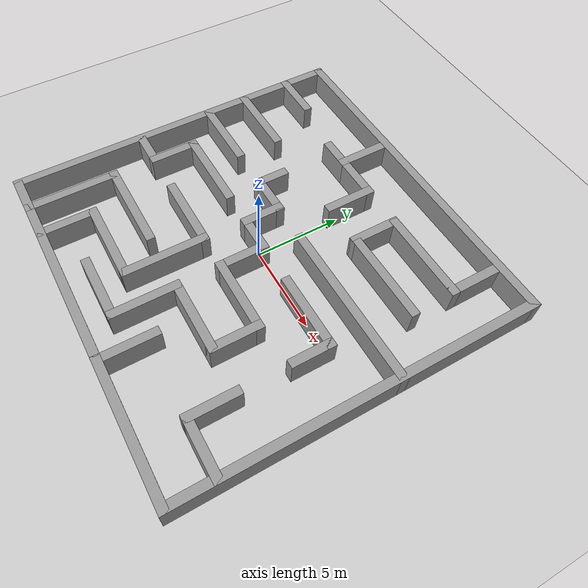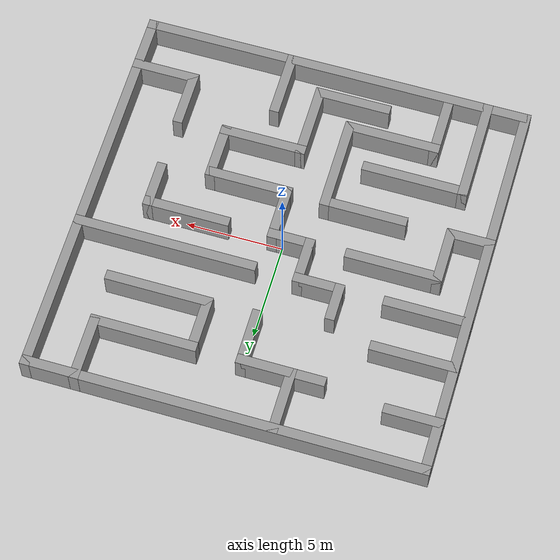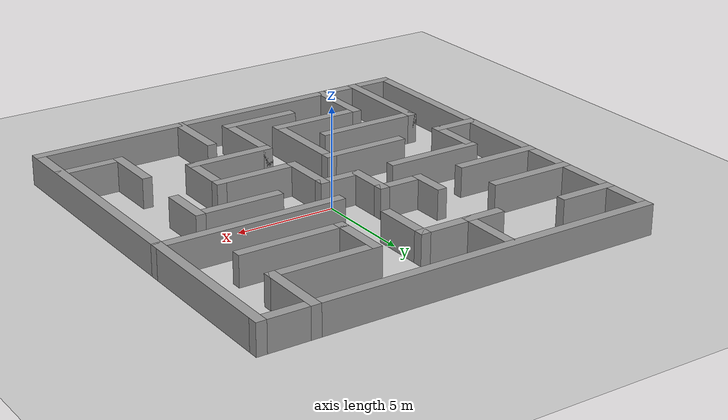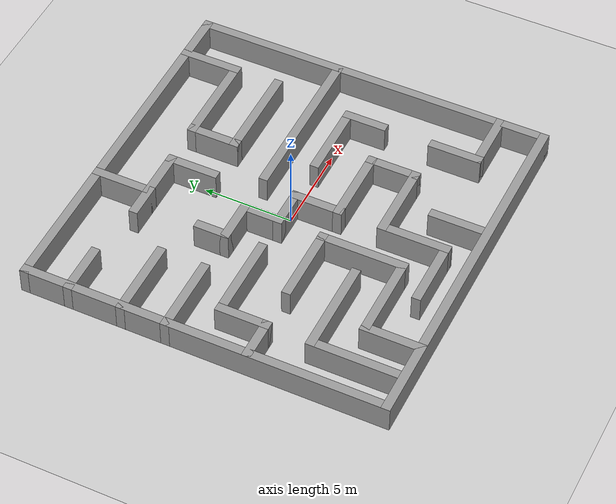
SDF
<sdf version="1.6">
 <world name="default">
  <light name="sun" type="directional">
   <pose>0 0 10 0 -0 0</pose>
   <diffuse>0.8 0.8 0.8 1</diffuse>
   <specular>0.1 0.1 0.1 1</specular>
   <attenuation>
    <range>1000</range>
    <constant>0.9</constant>
    <linear>0.01</linear>
    <quadratic>0.001</quadratic>
   </attenuation>
   <direction>-0.5 0.5 -1</direction>
  </light>
  <model name="ground_plane">
   <static>1</static>
   <link name="link">
    <collision name="collision">
     <geometry><plane><normal>0 0 1</normal><size>100 100</size></plane></geometry>
     <surface><friction><ode><mu>100</mu><mu2>50</mu2></ode></friction></surface>
    </collision>
    <visual name="visual">
     <cast_shadows>0</cast_shadows>
     <geometry><plane><normal>0 0 1</normal><size>100 100</size></plane></geometry>
     <material>
      <script><uri>file://media/materials/scripts/gazebo.material</uri><name>Gazebo/Grey</name></script>
     </material>
    </visual>
   </link>
  </model>
  <gravity>0 0 -9.8</gravity>
  <magnetic_field>6e-06 2.3e-05 -4.2e-05</magnetic_field>
  <atmosphere type="adiabatic"/>
  <physics name="default_physics" default="0" type="ode">
   <max_step_size>0.001</max_step_size>
   <real_time_factor>1</real_time_factor>
   <real_time_update_rate>1000</real_time_update_rate>
  </physics>
  <scene><ambient>0.4 0.4 0.4 1</ambient><background>0.7 0.7 0.7 1</background><shadows>1</shadows></scene>
  <spherical_coordinates>
   <surface_model>EARTH_WGS84</surface_model>
   <latitude_deg>0</latitude_deg>
   <longitude_deg>0</longitude_deg>
   <elevation>0</elevation>
   <heading_deg>0</heading_deg>
  </spherical_coordinates>
  <model name="one_try">
   <link name="Wall_0">
    <collision name="Wall_0_Collision">
     <geometry><box><size>20.5 0.5 1.5</size></box></geometry>
     <pose>0 0 0.75 0 -0 0</pose>
    </collision>
    <visual name="Wall_0_Visual">
     <pose>0 0 0.75 0 -0 0</pose>
     <geometry><box><size>20.5 0.5 1.5</size></box></geometry>
     <material>
      <script><uri>file://media/materials/scripts/gazebo.material</uri><name>Gazebo/Grey</name></script>
      <ambient>1 1 1 1</ambient>
     </material>
    </visual>
    <pose>-10 0 0 0 0 -1.5708</pose>
   </link>
   <link name="Wall_1">
    <collision name="Wall_1_Collision">
     <geometry><box><size>20.5 0.5 1.5</size></box></geometry>
     <pose>0 0 0.75 0 -0 0</pose>
    </collision>
    <visual name="Wall_1_Visual">
     <pose>0 0 0.75 0 -0 0</pose>
     <geometry><box><size>20.5 0.5 1.5</size></box></geometry>
     <material>
      <script><uri>file://media/materials/scripts/gazebo.material</uri><name>Gazebo/Grey</name></script>
      <ambient>1 1 1 1</ambient>
     </material>
    </visual>
    <pose>0 -10 0 0 -0 0</pose>
   </link>
   <link name="Wall_10">
    <collision name="Wall_10_Collision">
     <geometry><box><size>5 0.5 1.5</size></box></geometry>
     <pose>0 0 0.75 0 -0 0</pose>
    </collision>
    <visual name="Wall_10_Visual">
     <pose>0 0 0.75 0 -0 0</pose>
     <geometry><box><size>5 0.5 1.5</size></box></geometry>
     <material>
      <script><uri>file://media/materials/scripts/gazebo.material</uri><name>Gazebo/Grey</name></script>
      <ambient>1 1 1 1</ambient>
     </material>
    </visual>
    <pose>-1.5 -4.75 0 0 -0 1.5708</pose>
   </link>
   <link name="Wall_11">
    <collision name="Wall_11_Collision">
     <geometry><box><size>4.5 0.5 1.5</size></box></geometry>
     <pose>0 0 0.75 0 -0 0</pose>
    </collision>
    <visual name="Wall_11_Visual">
     <pose>0 0 0.75 0 -0 0</pose>
     <geometry><box><size>4.5 0.5 1.5</size></box></geometry>
     <material>
      <script><uri>file://media/materials/scripts/gazebo.material</uri><name>Gazebo/Grey</name></script>
      <ambient>1 1 1 1</ambient>
     </material>
    </visual>
    <pose>-3.5 -2.5 0 0 -0 3.14159</pose>
   </link>
   <link name="Wall_13">
    <collision name="Wall_13_Collision">
     <geometry><box><size>2.5 0.5 1.5</size></box></geometry>
     <pose>0 0 0.75 0 -0 0</pose>
    </collision>
    <visual name="Wall_13_Visual">
     <pose>0 0 0.75 0 -0 0</pose>
     <geometry><box><size>2.5 0.5 1.5</size></box></geometry>
     <material>
      <script><uri>file://media/materials/scripts/gazebo.material</uri><name>Gazebo/Grey</name></script>
      <ambient>1 1 1 1</ambient>
     </material>
    </visual>
    <pose>-9 -2.5 0 0 -0 0</pose>
   </link>
   <link name="Wall_14">
    <collision name="Wall_14_Collision">
     <geometry><box><size>3 0.5 1.5</size></box></geometry>
     <pose>0 0 0.75 0 -0 0</pose>
    </collision>
    <visual name="Wall_14_Visual">
     <pose>0 0 0.75 0 -0 0</pose>
     <geometry><box><size>3 0.5 1.5</size></box></geometry>
     <material>
      <script><uri>file://media/materials/scripts/gazebo.material</uri><name>Gazebo/Grey</name></script>
      <ambient>1 1 1 1</ambient>
     </material>
    </visual>
    <pose>-8 -1.25 0 0 -0 1.5708</pose>
   </link>
   <link name="Wall_15">
    <collision name="Wall_15_Collision">
     <geometry><box><size>5 0.5 1.5</size></box></geometry>
     <pose>0 0 0.75 0 -0 0</pose>
    </collision>
    <visual name="Wall_15_Visual">
     <pose>0 0 0.75 0 -0 0</pose>
     <geometry><box><size>5 0.5 1.5</size></box></geometry>
     <material>
      <script><uri>file://media/materials/scripts/gazebo.material</uri><name>Gazebo/Grey</name></script>
      <ambient>1 1 1 1</ambient>
     </material>
    </visual>
    <pose>-5.75 0 0 0 -0 0</pose>
   </link>
   <link name="Wall_17">
    <collision name="Wall_17_Collision">
     <geometry><box><size>4 0.5 1.5</size></box></geometry>
     <pose>0 0 0.75 0 -0 0</pose>
    </collision>
    <visual name="Wall_17_Visual">
     <pose>0 0 0.75 0 -0 0</pose>
     <geometry><box><size>4 0.5 1.5</size></box></geometry>
     <material>
      <script><uri>file://media/materials/scripts/gazebo.material</uri><name>Gazebo/Grey</name></script>
      <ambient>1 1 1 1</ambient>
     </material>
    </visual>
    <pose>-1.25 -8.5 0 0 -0 0</pose>
   </link>
   <link name="Wall_18">
    <collision name="Wall_18_Collision">
     <geometry><box><size>4 0.5 1.5</size></box></geometry>
     <pose>0 0 0.75 0 -0 0</pose>
    </collision>
    <visual name="Wall_18_Visual">
     <pose>0 0 0.75 0 -0 0</pose>
     <geometry><box><size>4 0.5 1.5</size></box></geometry>
     <material>
      <script><uri>file://media/materials/scripts/gazebo.material</uri><name>Gazebo/Grey</name></script>
      <ambient>1 1 1 1</ambient>
     </material>
    </visual>
    <pose>0.5 -6.75 0 0 -0 1.5708</pose>
   </link>
   <link name="Wall_19">
    <collision name="Wall_19_Collision">
     <geometry><box><size>4.5 0.5 1.5</size></box></geometry>
     <pose>0 0 0.75 0 -0 0</pose>
    </collision>
    <visual name="Wall_19_Visual">
     <pose>0 0 0.75 0 -0 0</pose>
     <geometry><box><size>4.5 0.5 1.5</size></box></geometry>
     <material>
      <script><uri>file://media/materials/scripts/gazebo.material</uri><name>Gazebo/Grey</name></script>
      <ambient>1 1 1 1</ambient>
     </material>
    </visual>
    <pose>2.5 -5 0 0 -0 0</pose>
   </link>
   <link name="Wall_2">
    <collision name="Wall_2_Collision">
     <geometry><box><size>20.5 0.5 1.5</size></box></geometry>
     <pose>0 0 0.75 0 -0 0</pose>
    </collision>
    <visual name="Wall_2_Visual">
     <pose>0 0 0.75 0 -0 0</pose>
     <geometry><box><size>20.5 0.5 1.5</size></box></geometry>
     <material>
      <script><uri>file://media/materials/scripts/gazebo.material</uri><name>Gazebo/Grey</name></script>
      <ambient>1 1 1 1</ambient>
     </material>
    </visual>
    <pose>10 0 0 0 -0 1.5708</pose>
   </link>
   <link name="Wall_20">
    <collision name="Wall_20_Collision">
     <geometry><box><size>3 0.5 1.5</size></box></geometry>
     <pose>0 0 0.75 0 -0 0</pose>
    </collision>
    <visual name="Wall_20_Visual">
     <pose>0 0 0.75 0 -0 0</pose>
     <geometry><box><size>3 0.5 1.5</size></box></geometry>
     <material>
      <script><uri>file://media/materials/scripts/gazebo.material</uri><name>Gazebo/Grey</name></script>
      <ambient>1 1 1 1</ambient>
     </material>
    </visual>
    <pose>4.5 -3.75 0 0 -0 1.5708</pose>
   </link>
   <link name="Wall_21">
    <collision name="Wall_21_Collision">
     <geometry><box><size>4.5 0.5 1.5</size></box></geometry>
     <pose>0 0 0.75 0 -0 0</pose>
    </collision>
    <visual name="Wall_21_Visual">
     <pose>0 0 0.75 0 -0 0</pose>
     <geometry><box><size>4.5 0.5 1.5</size></box></geometry>
     <material>
      <script><uri>file://media/materials/scripts/gazebo.material</uri><name>Gazebo/Grey</name></script>
      <ambient>1 1 1 1</ambient>
     </material>
    </visual>
    <pose>2.5 -2.5 0 0 -0 3.14159</pose>
   </link>
   <link name="Wall_22">
    <collision name="Wall_22_Collision">
     <geometry><box><size>3 0.5 1.5</size></box></geometry>
     <pose>0 0 0.75 0 -0 0</pose>
    </collision>
    <visual name="Wall_22_Visual">
     <pose>0 0 0.75 0 -0 0</pose>
     <geometry><box><size>3 0.5 1.5</size></box></geometry>
     <material>
      <script><uri>file://media/materials/scripts/gazebo.material</uri><name>Gazebo/Grey</name></script>
      <ambient>1 1 1 1</ambient>
     </material>
    </visual>
    <pose>0.5 -1.25 0 0 -0 1.5708</pose>
   </link>
   <link name="Wall_23">
    <collision name="Wall_23_Collision">
     <geometry><box><size>2.4 0.5 1.5</size></box></geometry>
     <pose>0 0 0.75 0 -0 0</pose>
    </collision>
    <visual name="Wall_23_Visual">
     <pose>0 0 0.75 0 -0 0</pose>
     <geometry><box><size>2.4 0.5 1.5</size></box></geometry>
     <material>
      <script><uri>file://media/materials/scripts/gazebo.material</uri><name>Gazebo/Grey</name></script>
      <ambient>1 1 1 1</ambient>
     </material>
    </visual>
    <pose>-0.45 0 0 0 -0 3.14159</pose>
   </link>
   <link name="Wall_24">
    <collision name="Wall_24_Collision">
     <geometry><box><size>2.5 0.5 1.5</size></box></geometry>
     <pose>0 0 0.75 0 -0 0</pose>
    </collision>
    <visual name="Wall_24_Visual">
     <pose>0 0 0.75 0 -0 0</pose>
     <geometry><box><size>2.5 0.5 1.5</size></box></geometry>
     <material>
      <script><uri>file://media/materials/scripts/gazebo.material</uri><name>Gazebo/Grey</name></script>
      <ambient>1 1 1 1</ambient>
     </material>
    </visual>
    <pose>-1.4 1 0 0 -0 1.5708</pose>
   </link>
   <link name="Wall_25">
    <collision name="Wall_25_Collision">
     <geometry><box><size>2.6 0.5 1.5</size></box></geometry>
     <pose>0 0 0.75 0 -0 0</pose>
    </collision>
    <visual name="Wall_25_Visual">
     <pose>0 0 0.75 0 -0 0</pose>
     <geometry><box><size>2.6 0.5 1.5</size></box></geometry>
     <material>
      <script><uri>file://media/materials/scripts/gazebo.material</uri><name>Gazebo/Grey</name></script>
      <ambient>1 1 1 1</ambient>
     </material>
    </visual>
    <pose>-2.45 2 0 0 -0 3.14159</pose>
   </link>
   <link name="Wall_26">
    <collision name="Wall_26_Collision">
     <geometry><box><size>2 0.5 1.5</size></box></geometry>
     <pose>0 0 0.75 0 -0 0</pose>
    </collision>
    <visual name="Wall_26_Visual">
     <pose>0 0 0.75 0 -0 0</pose>
     <geometry><box><size>2 0.5 1.5</size></box></geometry>
     <material>
      <script><uri>file://media/materials/scripts/gazebo.material</uri><name>Gazebo/Grey</name></script>
      <ambient>1 1 1 1</ambient>
     </material>
    </visual>
    <pose>-3.5 2.75 0 0 -0 1.5708</pose>
   </link>
   <link name="Wall_28">
    <collision name="Wall_28_Collision">
     <geometry><box><size>3.5 0.5 1.5</size></box></geometry>
     <pose>0 0 0.75 0 -0 0</pose>
    </collision>
    <visual name="Wall_28_Visual">
     <pose>0 0 0.75 0 -0 0</pose>
     <geometry><box><size>3.5 0.5 1.5</size></box></geometry>
     <material>
      <script><uri>file://media/materials/scripts/gazebo.material</uri><name>Gazebo/Grey</name></script>
      <ambient>1 1 1 1</ambient>
     </material>
    </visual>
    <pose>2.445 -8.5 0 0 0 -1.5708</pose>
   </link>
   <link name="Wall_3">
    <collision name="Wall_3_Collision">
     <geometry><box><size>20.5 0.5 1.5</size></box></geometry>
     <pose>0 0 0.75 0 -0 0</pose>
    </collision>
    <visual name="Wall_3_Visual">
     <pose>0 0 0.75 0 -0 0</pose>
     <geometry><box><size>20.5 0.5 1.5</size></box></geometry>
     <material>
      <script><uri>file://media/materials/scripts/gazebo.material</uri><name>Gazebo/Grey</name></script>
      <ambient>1 1 1 1</ambient>
     </material>
    </visual>
    <pose>0 10 0 0 -0 3.14159</pose>
   </link>
   <link name="Wall_30">
    <collision name="Wall_30_Collision">
     <geometry><box><size>9.5 0.5 1.5</size></box></geometry>
     <pose>0 0 0.75 0 -0 0</pose>
    </collision>
    <visual name="Wall_30_Visual">
     <pose>0 0 0.75 0 -0 0</pose>
     <geometry><box><size>9.5 0.5 1.5</size></box></geometry>
     <material>
      <script><uri>file://media/materials/scripts/gazebo.material</uri><name>Gazebo/Grey</name></script>
      <ambient>1 1 1 1</ambient>
     </material>
    </visual>
    <pose>5.5 2 0 0 -0 0</pose>
   </link>
   <link name="Wall_34">
    <collision name="Wall_34_Collision">
     <geometry><box><size>4.5 0.5 1.5</size></box></geometry>
     <pose>0 0 0.75 0 -0 0</pose>
    </collision>
    <visual name="Wall_34_Visual">
     <pose>0 0 0.75 0 -0 0</pose>
     <geometry><box><size>4.5 0.5 1.5</size></box></geometry>
     <material>
      <script><uri>file://media/materials/scripts/gazebo.material</uri><name>Gazebo/Grey</name></script>
      <ambient>1 1 1 1</ambient>
     </material>
    </visual>
    <pose>5 0 0 0 -0 0</pose>
   </link>
   <link name="Wall_35">
    <collision name="Wall_35_Collision">
     <geometry><box><size>2.5 0.5 1.5</size></box></geometry>
     <pose>0 0 0.75 0 -0 0</pose>
    </collision>
    <visual name="Wall_35_Visual">
     <pose>0 0 0.75 0 -0 0</pose>
     <geometry><box><size>2.5 0.5 1.5</size></box></geometry>
     <material>
      <script><uri>file://media/materials/scripts/gazebo.material</uri><name>Gazebo/Grey</name></script>
      <ambient>1 1 1 1</ambient>
     </material>
    </visual>
    <pose>7 -1 0 0 0 -1.5708</pose>
   </link>
   <link name="Wall_37">
    <collision name="Wall_37_Collision">
     <geometry><box><size>3 0.5 1.5</size></box></geometry>
     <pose>0 0 0.75 0 -0 0</pose>
    </collision>
    <visual name="Wall_37_Visual">
     <pose>0 0 0.75 0 -0 0</pose>
     <geometry><box><size>3 0.5 1.5</size></box></geometry>
     <material>
      <script><uri>file://media/materials/scripts/gazebo.material</uri><name>Gazebo/Grey</name></script>
      <ambient>1 1 1 1</ambient>
     </material>
    </visual>
    <pose>7 -6.25 0 0 0 -1.5708</pose>
   </link>
   <link name="Wall_38">
    <collision name="Wall_38_Collision">
     <geometry><box><size>3.5 0.5 1.5</size></box></geometry>
     <pose>0 0 0.75 0 -0 0</pose>
    </collision>
    <visual name="Wall_38_Visual">
     <pose>0 0 0.75 0 -0 0</pose>
     <geometry><box><size>3.5 0.5 1.5</size></box></geometry>
     <material>
      <script><uri>file://media/materials/scripts/gazebo.material</uri><name>Gazebo/Grey</name></script>
      <ambient>1 1 1 1</ambient>
     </material>
    </visual>
    <pose>8.5 -7.5 0 0 -0 0</pose>
   </link>
   <link name="Wall_43">
    <collision name="Wall_43_Collision">
     <geometry><box><size>3.5 0.5 1.5</size></box></geometry>
     <pose>0 0 0.75 0 -0 0</pose>
    </collision>
    <visual name="Wall_43_Visual">
     <pose>0 0 0.75 0 -0 0</pose>
     <geometry><box><size>3.5 0.5 1.5</size></box></geometry>
     <material>
      <script><uri>file://media/materials/scripts/gazebo.material</uri><name>Gazebo/Grey</name></script>
      <ambient>1 1 1 1</ambient>
     </material>
    </visual>
    <pose>7.5 8.5 0 0 0 -1.5708</pose>
   </link>
   <link name="Wall_44">
    <collision name="Wall_44_Collision">
     <geometry><box><size>5.5 0.5 1.5</size></box></geometry>
     <pose>0 0 0.75 0 -0 0</pose>
    </collision>
    <visual name="Wall_44_Visual">
     <pose>0 0 0.75 0 -0 0</pose>
     <geometry><box><size>5.5 0.5 1.5</size></box></geometry>
     <material>
      <script><uri>file://media/materials/scripts/gazebo.material</uri><name>Gazebo/Grey</name></script>
      <ambient>1 1 1 1</ambient>
     </material>
    </visual>
    <pose>5 7 0 0 -0 3.14159</pose>
   </link>
   <link name="Wall_45">
    <collision name="Wall_45_Collision">
     <geometry><box><size>3 0.5 1.5</size></box></geometry>
     <pose>0 0 0.75 0 -0 0</pose>
    </collision>
    <visual name="Wall_45_Visual">
     <pose>0 0 0.75 0 -0 0</pose>
     <geometry><box><size>3 0.5 1.5</size></box></geometry>
     <material>
      <script><uri>file://media/materials/scripts/gazebo.material</uri><name>Gazebo/Grey</name></script>
      <ambient>1 1 1 1</ambient>
     </material>
    </visual>
    <pose>2.5 5.75 0 0 0 -1.5708</pose>
   </link>
   <link name="Wall_46">
    <collision name="Wall_46_Collision">
     <geometry><box><size>5.5 0.5 1.5</size></box></geometry>
     <pose>0 0 0.75 0 -0 0</pose>
    </collision>
    <visual name="Wall_46_Visual">
     <pose>0 0 0.75 0 -0 0</pose>
     <geometry><box><size>5.5 0.5 1.5</size></box></geometry>
     <material>
      <script><uri>file://media/materials/scripts/gazebo.material</uri><name>Gazebo/Grey</name></script>
      <ambient>1 1 1 1</ambient>
     </material>
    </visual>
    <pose>5 4.5 0 0 -0 0</pose>
   </link>
   <link name="Wall_5">
    <collision name="Wall_5_Collision">
     <geometry><box><size>5.499 0.5 1.5</size></box></geometry>
     <pose>0 0 0.75 0 -0 0</pose>
    </collision>
    <visual name="Wall_5_Visual">
     <pose>0 0 0.75 0 -0 0</pose>
     <geometry><box><size>5.499 0.5 1.5</size></box></geometry>
     <material>
      <script><uri>file://media/materials/scripts/gazebo.material</uri><name>Gazebo/Grey</name></script>
      <ambient>1 1 1 1</ambient>
     </material>
    </visual>
    <pose>-8 -7.4995 0 0 -0 1.5708</pose>
   </link>
   <link name="Wall_51">
    <collision name="Wall_51_Collision">
     <geometry><box><size>3 0.5 1.5</size></box></geometry>
     <pose>0 0 0.75 0 -0 0</pose>
    </collision>
    <visual name="Wall_51_Visual">
     <pose>0 0 0.75 0 -0 0</pose>
     <geometry><box><size>3 0.5 1.5</size></box></geometry>
     <material>
      <script><uri>file://media/materials/scripts/gazebo.material</uri><name>Gazebo/Grey</name></script>
      <ambient>1 1 1 1</ambient>
     </material>
    </visual>
    <pose>-8.75 7.5 0 0 -0 3.14159</pose>
   </link>
   <link name="Wall_53">
    <collision name="Wall_53_Collision">
     <geometry><box><size>4.5 0.5 1.5</size></box></geometry>
     <pose>0 0 0.75 0 -0 0</pose>
    </collision>
    <visual name="Wall_53_Visual">
     <pose>0 0 0.75 0 -0 0</pose>
     <geometry><box><size>4.5 0.5 1.5</size></box></geometry>
     <material>
      <script><uri>file://media/materials/scripts/gazebo.material</uri><name>Gazebo/Grey</name></script>
      <ambient>1 1 1 1</ambient>
     </material>
    </visual>
    <pose>-8 2 0 0 -0 0</pose>
   </link>
   <link name="Wall_55">
    <collision name="Wall_55_Collision">
     <geometry><box><size>4.5 0.5 1.5</size></box></geometry>
     <pose>0 0 0.75 0 -0 0</pose>
    </collision>
    <visual name="Wall_55_Visual">
     <pose>0 0 0.75 0 -0 0</pose>
     <geometry><box><size>4.5 0.5 1.5</size></box></geometry>
     <material>
      <script><uri>file://media/materials/scripts/gazebo.material</uri><name>Gazebo/Grey</name></script>
      <ambient>1 1 1 1</ambient>
     </material>
    </visual>
    <pose>-8 4.5 0 0 -0 0</pose>
   </link>
   <link name="Wall_57">
    <collision name="Wall_57_Collision">
     <geometry><box><size>3 0.5 1.5</size></box></geometry>
     <pose>0 0 0.75 0 -0 0</pose>
    </collision>
    <visual name="Wall_57_Visual">
     <pose>0 0 0.75 0 -0 0</pose>
     <geometry><box><size>3 0.5 1.5</size></box></geometry>
     <material>
      <script><uri>file://media/materials/scripts/gazebo.material</uri><name>Gazebo/Grey</name></script>
      <ambient>1 1 1 1</ambient>
     </material>
    </visual>
    <pose>0 5.75 0 0 -0 1.5708</pose>
   </link>
   <link name="Wall_58">
    <collision name="Wall_58_Collision">
     <geometry><box><size>3 0.5 1.5</size></box></geometry>
     <pose>0 0 0.75 0 -0 0</pose>
    </collision>
    <visual name="Wall_58_Visual">
     <pose>0 0 0.75 0 -0 0</pose>
     <geometry><box><size>3 0.5 1.5</size></box></geometry>
     <material>
      <script><uri>file://media/materials/scripts/gazebo.material</uri><name>Gazebo/Grey</name></script>
      <ambient>1 1 1 1</ambient>
     </material>
    </visual>
    <pose>-1.25 7 0 0 -0 3.14159</pose>
   </link>
   <link name="Wall_6">
    <collision name="Wall_6_Collision">
     <geometry><box><size>5.5 0.5 1.5</size></box></geometry>
     <pose>0 0 0.75 0 -0 0</pose>
    </collision>
    <visual name="Wall_6_Visual">
     <pose>0 0 0.75 0 -0 0</pose>
     <geometry><box><size>5.5 0.5 1.5</size></box></geometry>
     <material>
      <script><uri>file://media/materials/scripts/gazebo.material</uri><name>Gazebo/Grey</name></script>
      <ambient>1 1 1 1</ambient>
     </material>
    </visual>
    <pose>-5.5 -5 0 0 -0 0</pose>
   </link>
   <link name="Wall_60">
    <collision name="Wall_60_Collision">
     <geometry><box><size>3.5 0.5 1.5</size></box></geometry>
     <pose>0 0 0.75 0 -0 0</pose>
    </collision>
    <visual name="Wall_60_Visual">
     <pose>0 0 0.75 0 -0 0</pose>
     <geometry><box><size>3.5 0.5 1.5</size></box></geometry>
     <material>
      <script><uri>file://media/materials/scripts/gazebo.material</uri><name>Gazebo/Grey</name></script>
      <ambient>1 1 1 1</ambient>
     </material>
    </visual>
    <pose>-2.5 8.5 0 0 -0 1.5708</pose>
   </link>
   <link name="Wall_64">
    <collision name="Wall_64_Collision">
     <geometry><box><size>2 0.5 1.5</size></box></geometry>
     <pose>0 0 0.75 0 -0 0</pose>
    </collision>
    <visual name="Wall_64_Visual">
     <pose>0 0 0.75 0 -0 0</pose>
     <geometry><box><size>2 0.5 1.5</size></box></geometry>
     <material>
      <script><uri>file://media/materials/scripts/gazebo.material</uri><name>Gazebo/Grey</name></script>
      <ambient>1 1 1 1</ambient>
     </material>
    </visual>
    <pose>-3.25 7 0 0 -0 3.14159</pose>
   </link>
   <link name="Wall_8">
    <collision name="Wall_8_Collision">
     <geometry><box><size>3.5 0.5 1.5</size></box></geometry>
     <pose>0 0 0.75 0 -0 0</pose>
    </collision>
    <visual name="Wall_8_Visual">
     <pose>0 0 0.75 0 -0 0</pose>
     <geometry><box><size>3.5 0.5 1.5</size></box></geometry>
     <material>
      <script><uri>file://media/materials/scripts/gazebo.material</uri><name>Gazebo/Grey</name></script>
      <ambient>1 1 1 1</ambient>
     </material>
    </visual>
    <pose>-6 -8.5 0 0 -0 1.5708</pose>
   </link>
   <link name="Wall_9">
    <collision name="Wall_9_Collision">
     <geometry><box><size>5 0.5 1.5</size></box></geometry>
     <pose>0 0 0.75 0 -0 0</pose>
    </collision>
    <visual name="Wall_9_Visual">
     <pose>0 0 0.75 0 -0 0</pose>
     <geometry><box><size>5 0.5 1.5</size></box></geometry>
     <material>
      <script><uri>file://media/materials/scripts/gazebo.material</uri><name>Gazebo/Grey</name></script>
      <ambient>1 1 1 1</ambient>
     </material>
    </visual>
    <pose>-3.75 -7 0 0 -0 0</pose>
   </link>
   <static>1</static>
  </model>
 </world>
</sdf>
